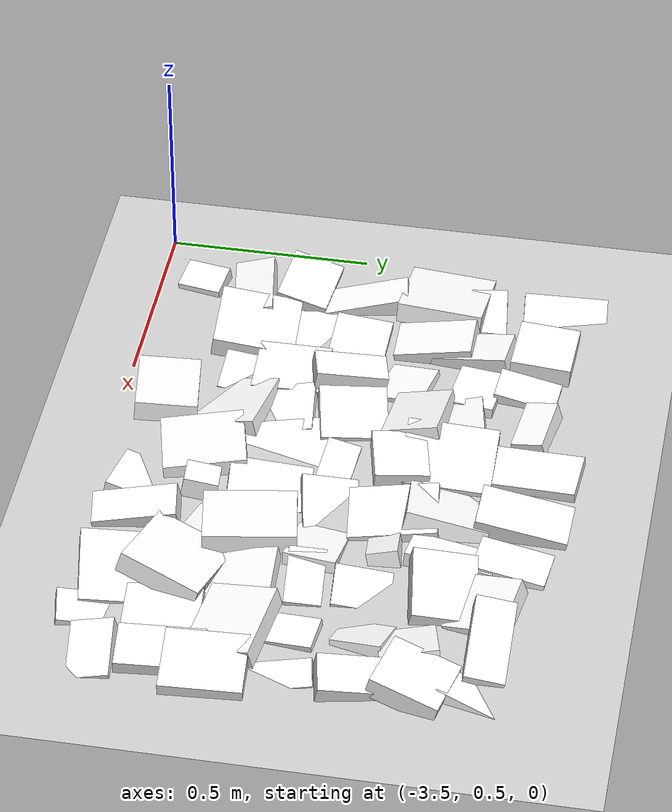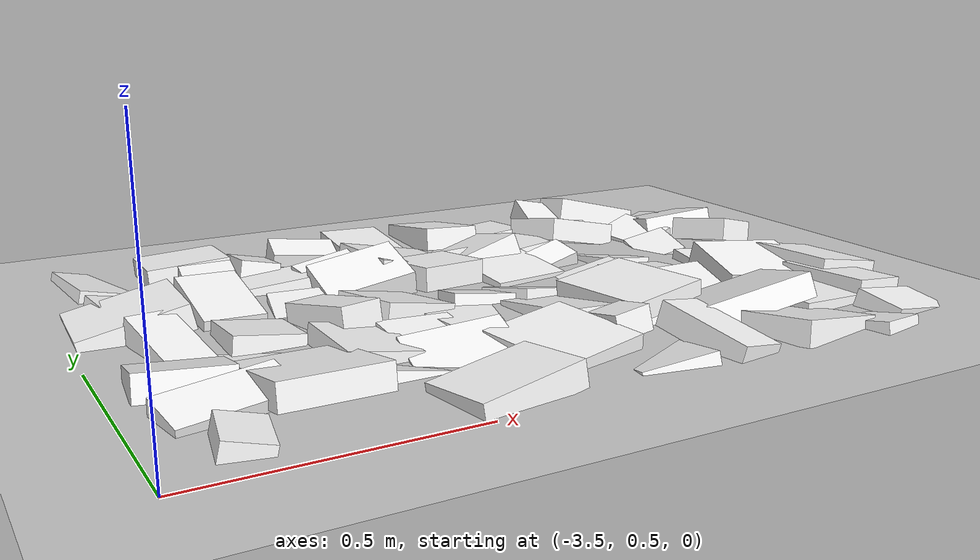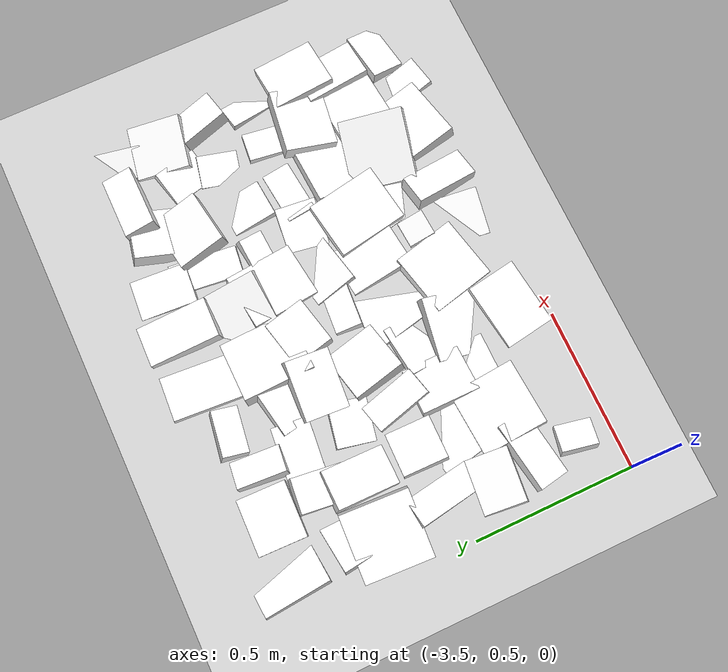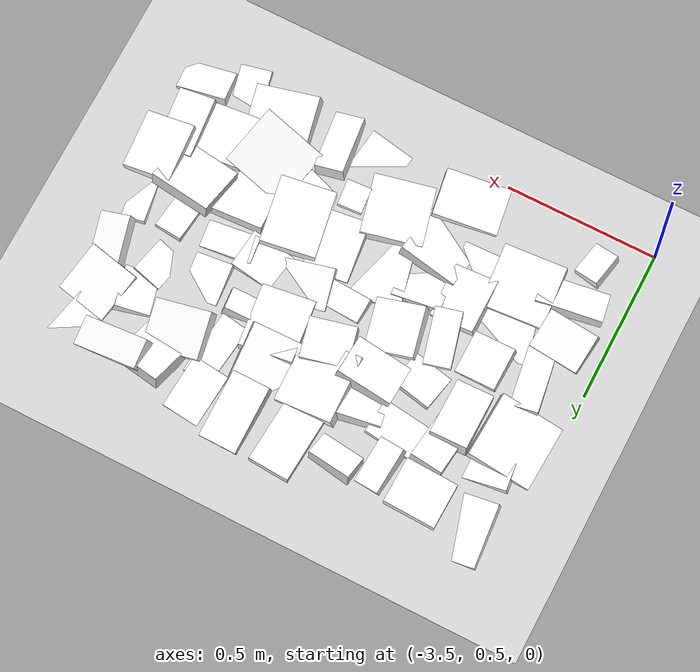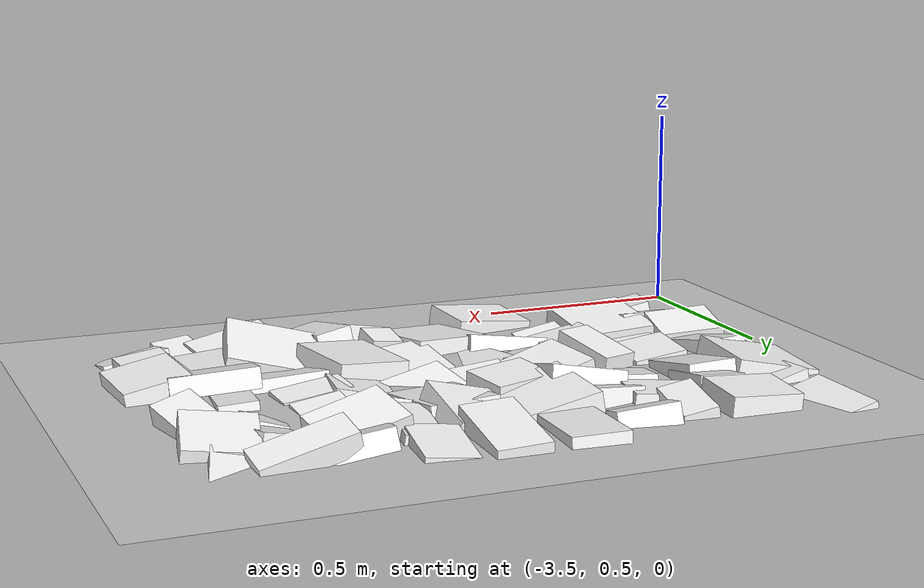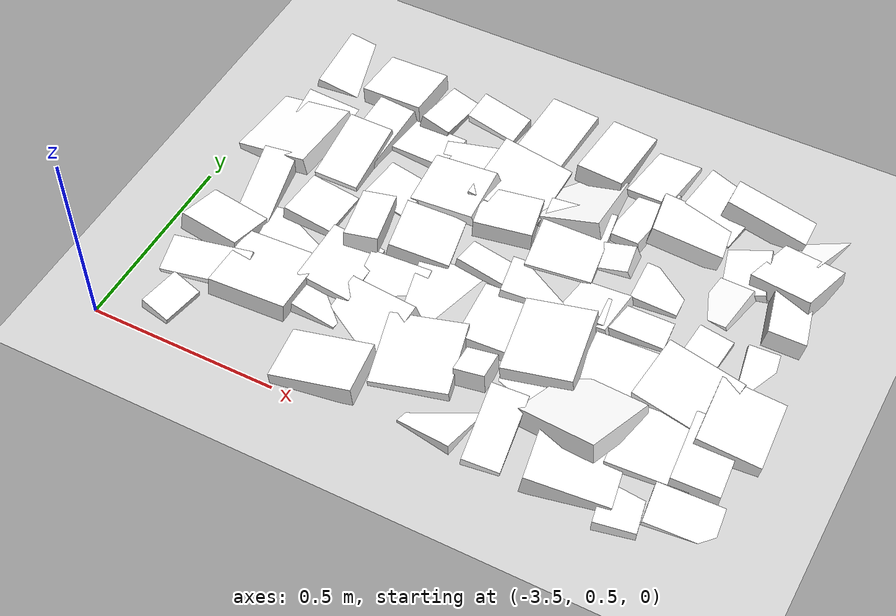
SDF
<sdf version="1.7">
 <world name="default">
  <include><uri>model://sun</uri></include>
  <include><uri>model://ground_plane</uri></include>
  <model name="static_environment">
   <static>true</static>
   <link name="region_0">
    <pose>-2.014062118704401 1.5020243571643022 -0.024271251875729018 0.20937350404994248 0.20035742705850612 2.9082107138131725</pose>
    <collision name="region_0_collision">
     <geometry><box><size>0.09812442635695086 0.18600745447731074 0.05</size></box></geometry>
     <surface><friction><ode><mu>1.0</mu><mu2>1.0</mu2></ode></friction></surface>
    </collision>
    <visual name="region_0_visual">
     <geometry><box><size>0.09812442635695086 0.18600745447731074 0.05</size></box></geometry>
     <material><ambient>1.0 1.0 1.0 1.0</ambient><diffuse>1.0 1.0 1.0 1.0</diffuse></material>
    </visual>
   </link>
   <link name="region_1">
    <pose>-2.162831317794181 1.506378882661463 0.02221125680265211 0.17636777055464248 -0.24887038324074323 3.1521130136101467</pose>
    <collision name="region_1_collision">
     <geometry><box><size>0.21854240044126752 0.09558139820341147 0.05</size></box></geometry>
     <surface><friction><ode><mu>1.0</mu><mu2>1.0</mu2></ode></friction></surface>
    </collision>
    <visual name="region_1_visual">
     <geometry><box><size>0.21854240044126752 0.09558139820341147 0.05</size></box></geometry>
     <material><ambient>1.0 1.0 1.0 1.0</ambient><diffuse>1.0 1.0 1.0 1.0</diffuse></material>
    </visual>
   </link>
   <link name="region_2">
    <pose>-2.283772969083941 1.4796707948259167 0.013228022516943938 -0.23959510102396692 -0.18239491081544157 2.949636508700845</pose>
    <collision name="region_2_collision">
     <geometry><box><size>0.15780564498968497 0.14780661204940646 0.05</size></box></geometry>
     <surface><friction><ode><mu>1.0</mu><mu2>1.0</mu2></ode></friction></surface>
    </collision>
    <visual name="region_2_visual">
     <geometry><box><size>0.15780564498968497 0.14780661204940646 0.05</size></box></geometry>
     <material><ambient>1.0 1.0 1.0 1.0</ambient><diffuse>1.0 1.0 1.0 1.0</diffuse></material>
    </visual>
   </link>
   <link name="region_3">
    <pose>-2.4515872309889537 1.519011785559593 -0.010520660823472323 0.11656298880633531 0.10131117762762315 3.0552847381317116</pose>
    <collision name="region_3_collision">
     <geometry><box><size>0.12148463767350438 0.1757178967818004 0.05</size></box></geometry>
     <surface><friction><ode><mu>1.0</mu><mu2>1.0</mu2></ode></friction></surface>
    </collision>
    <visual name="region_3_visual">
     <geometry><box><size>0.12148463767350438 0.1757178967818004 0.05</size></box></geometry>
     <material><ambient>1.0 1.0 1.0 1.0</ambient><diffuse>1.0 1.0 1.0 1.0</diffuse></material>
    </visual>
   </link>
   <link name="region_4">
    <pose>-2.5923860903359817 1.5270743971972522 0.01337378253102444 0.16250462660738674 -0.04667984909666917 3.117154205710657</pose>
    <collision name="region_4_collision">
     <geometry><box><size>0.12519712936590835 0.22170871185247784 0.05</size></box></geometry>
     <surface><friction><ode><mu>1.0</mu><mu2>1.0</mu2></ode></friction></surface>
    </collision>
    <visual name="region_4_visual">
     <geometry><box><size>0.12519712936590835 0.22170871185247784 0.05</size></box></geometry>
     <material><ambient>1.0 1.0 1.0 1.0</ambient><diffuse>1.0 1.0 1.0 1.0</diffuse></material>
    </visual>
   </link>
   <link name="region_5">
    <pose>-2.769207165839978 1.5278252979354006 -0.004037486487044689 -0.03797377672450064 -0.018425565136327038 3.0783615744119577</pose>
    <collision name="region_5_collision">
     <geometry><box><size>0.13509474410425104 0.22427072405078377 0.05</size></box></geometry>
     <surface><friction><ode><mu>1.0</mu><mu2>1.0</mu2></ode></friction></surface>
    </collision>
    <visual name="region_5_visual">
     <geometry><box><size>0.13509474410425104 0.22427072405078377 0.05</size></box></geometry>
     <material><ambient>1.0 1.0 1.0 1.0</ambient><diffuse>1.0 1.0 1.0 1.0</diffuse></material>
    </visual>
   </link>
   <link name="region_6">
    <pose>-2.9248046555684892 1.5140346236806959 0.006809999691643379 -0.23604610556923372 -0.0999149700880067 3.001926260414443</pose>
    <collision name="region_6_collision">
     <geometry><box><size>0.14482621502587664 0.08027523922062071 0.05</size></box></geometry>
     <surface><friction><ode><mu>1.0</mu><mu2>1.0</mu2></ode></friction></surface>
    </collision>
    <visual name="region_6_visual">
     <geometry><box><size>0.14482621502587664 0.08027523922062071 0.05</size></box></geometry>
     <material><ambient>1.0 1.0 1.0 1.0</ambient><diffuse>1.0 1.0 1.0 1.0</diffuse></material>
    </visual>
   </link>
   <link name="region_7">
    <pose>-3.0548788356708716 1.472990404820162 0.003620225776480468 0.15175832533868816 -0.1931991402300915 3.0300586072125983</pose>
    <collision name="region_7_collision">
     <geometry><box><size>0.08325299900103002 0.1534869106167438 0.05</size></box></geometry>
     <surface><friction><ode><mu>1.0</mu><mu2>1.0</mu2></ode></friction></surface>
    </collision>
    <visual name="region_7_visual">
     <geometry><box><size>0.08325299900103002 0.1534869106167438 0.05</size></box></geometry>
     <material><ambient>1.0 1.0 1.0 1.0</ambient><diffuse>1.0 1.0 1.0 1.0</diffuse></material>
    </visual>
   </link>
   <link name="region_8">
    <pose>-3.199467649924611 1.497797593473034 0.01973715369639454 0.05288884656779247 0.05167780158377683 3.1134359280956345</pose>
    <collision name="region_8_collision">
     <geometry><box><size>0.17125171375281345 0.14891059581547617 0.05</size></box></geometry>
     <surface><friction><ode><mu>1.0</mu><mu2>1.0</mu2></ode></friction></surface>
    </collision>
    <visual name="region_8_visual">
     <geometry><box><size>0.17125171375281345 0.14891059581547617 0.05</size></box></geometry>
     <material><ambient>1.0 1.0 1.0 1.0</ambient><diffuse>1.0 1.0 1.0 1.0</diffuse></material>
    </visual>
   </link>
   <link name="region_9">
    <pose>-3.3673509845132346 1.5267999636369054 -0.021326497802886726 0.047576228318045255 -0.2344244645741168 3.224128716265395</pose>
    <collision name="region_9_collision">
     <geometry><box><size>0.14700701749903353 0.20826712908445394 0.05</size></box></geometry>
     <surface><friction><ode><mu>1.0</mu><mu2>1.0</mu2></ode></friction></surface>
    </collision>
    <visual name="region_9_visual">
     <geometry><box><size>0.14700701749903353 0.20826712908445394 0.05</size></box></geometry>
     <material><ambient>1.0 1.0 1.0 1.0</ambient><diffuse>1.0 1.0 1.0 1.0</diffuse></material>
    </visual>
   </link>
   <link name="region_20">
    <pose>-2.0290737123224836 1.3544659618949602 0.013883972603981082 0.2249410385688751 0.10149108655000566 2.9496028667239127</pose>
    <collision name="region_20_collision">
     <geometry><box><size>0.16704801815626547 0.167758906910901 0.05</size></box></geometry>
     <surface><friction><ode><mu>1.0</mu><mu2>1.0</mu2></ode></friction></surface>
    </collision>
    <visual name="region_20_visual">
     <geometry><box><size>0.16704801815626547 0.167758906910901 0.05</size></box></geometry>
     <material><ambient>1.0 1.0 1.0 1.0</ambient><diffuse>1.0 1.0 1.0 1.0</diffuse></material>
    </visual>
   </link>
   <link name="region_21">
    <pose>-2.141953024207276 1.3257421074516773 -0.005484539528843396 -0.08901620623463669 0.23566264696378902 3.3760911898057206</pose>
    <collision name="region_21_collision">
     <geometry><box><size>0.11199022171846364 0.13784080210763588 0.05</size></box></geometry>
     <surface><friction><ode><mu>1.0</mu><mu2>1.0</mu2></ode></friction></surface>
    </collision>
    <visual name="region_21_visual">
     <geometry><box><size>0.11199022171846364 0.13784080210763588 0.05</size></box></geometry>
     <material><ambient>1.0 1.0 1.0 1.0</ambient><diffuse>1.0 1.0 1.0 1.0</diffuse></material>
    </visual>
   </link>
   <link name="region_22">
    <pose>-2.3200061189991206 1.3769906845053326 0.02109129773419422 0.19128535016952536 -0.22448069998746467 3.2789701077173645</pose>
    <collision name="region_22_collision">
     <geometry><box><size>0.1865126952338271 0.15265339425532023 0.05</size></box></geometry>
     <surface><friction><ode><mu>1.0</mu><mu2>1.0</mu2></ode></friction></surface>
    </collision>
    <visual name="region_22_visual">
     <geometry><box><size>0.1865126952338271 0.15265339425532023 0.05</size></box></geometry>
     <material><ambient>1.0 1.0 1.0 1.0</ambient><diffuse>1.0 1.0 1.0 1.0</diffuse></material>
    </visual>
   </link>
   <link name="region_23">
    <pose>-2.4446017266397075 1.3793270737823784 -0.003566932174191108 0.06492498947557018 0.1381406671326596 3.021408743883807</pose>
    <collision name="region_23_collision">
     <geometry><box><size>0.09088427286351888 0.21080937999444802 0.05</size></box></geometry>
     <surface><friction><ode><mu>1.0</mu><mu2>1.0</mu2></ode></friction></surface>
    </collision>
    <visual name="region_23_visual">
     <geometry><box><size>0.09088427286351888 0.21080937999444802 0.05</size></box></geometry>
     <material><ambient>1.0 1.0 1.0 1.0</ambient><diffuse>1.0 1.0 1.0 1.0</diffuse></material>
    </visual>
   </link>
   <link name="region_24">
    <pose>-2.5985965995793263 1.3455246946917856 0.001550151890214107 0.22298906133503016 0.24963683107212142 3.226961794424131</pose>
    <collision name="region_24_collision">
     <geometry><box><size>0.1708369603893236 0.19901999627410133 0.05</size></box></geometry>
     <surface><friction><ode><mu>1.0</mu><mu2>1.0</mu2></ode></friction></surface>
    </collision>
    <visual name="region_24_visual">
     <geometry><box><size>0.1708369603893236 0.19901999627410133 0.05</size></box></geometry>
     <material><ambient>1.0 1.0 1.0 1.0</ambient><diffuse>1.0 1.0 1.0 1.0</diffuse></material>
    </visual>
   </link>
   <link name="region_25">
    <pose>-2.7713814097055436 1.3216467055907886 0.012322138061207369 0.05829403702023506 -0.20039765036196355 3.152451337678578</pose>
    <collision name="region_25_collision">
     <geometry><box><size>0.1934364205563424 0.2222381332040455 0.05</size></box></geometry>
     <surface><friction><ode><mu>1.0</mu><mu2>1.0</mu2></ode></friction></surface>
    </collision>
    <visual name="region_25_visual">
     <geometry><box><size>0.1934364205563424 0.2222381332040455 0.05</size></box></geometry>
     <material><ambient>1.0 1.0 1.0 1.0</ambient><diffuse>1.0 1.0 1.0 1.0</diffuse></material>
    </visual>
   </link>
   <link name="region_26">
    <pose>-2.9149686044343603 1.330904333247847 0.004191153348755611 -0.17304069632451752 0.10586379385263428 3.320876202726018</pose>
    <collision name="region_26_collision">
     <geometry><box><size>0.15111479722179935 0.11785395388839123 0.05</size></box></geometry>
     <surface><friction><ode><mu>1.0</mu><mu2>1.0</mu2></ode></friction></surface>
    </collision>
    <visual name="region_26_visual">
     <geometry><box><size>0.15111479722179935 0.11785395388839123 0.05</size></box></geometry>
     <material><ambient>1.0 1.0 1.0 1.0</ambient><diffuse>1.0 1.0 1.0 1.0</diffuse></material>
    </visual>
   </link>
   <link name="region_27">
    <pose>-3.0560529507349563 1.350878241987214 -0.007789788959760315 0.022801163499002908 0.0930583674152155 3.0413464474967067</pose>
    <collision name="region_27_collision">
     <geometry><box><size>0.17796620561972773 0.11476944132182873 0.05</size></box></geometry>
     <surface><friction><ode><mu>1.0</mu><mu2>1.0</mu2></ode></friction></surface>
    </collision>
    <visual name="region_27_visual">
     <geometry><box><size>0.17796620561972773 0.11476944132182873 0.05</size></box></geometry>
     <material><ambient>1.0 1.0 1.0 1.0</ambient><diffuse>1.0 1.0 1.0 1.0</diffuse></material>
    </visual>
   </link>
   <link name="region_28">
    <pose>-3.183323975746301 1.3226147355502407 0.007274268477214019 -0.1859034487469569 0.023826251471153748 3.0372617233279735</pose>
    <collision name="region_28_collision">
     <geometry><box><size>0.10730367351970604 0.19324631848978693 0.05</size></box></geometry>
     <surface><friction><ode><mu>1.0</mu><mu2>1.0</mu2></ode></friction></surface>
    </collision>
    <visual name="region_28_visual">
     <geometry><box><size>0.10730367351970604 0.19324631848978693 0.05</size></box></geometry>
     <material><ambient>1.0 1.0 1.0 1.0</ambient><diffuse>1.0 1.0 1.0 1.0</diffuse></material>
    </visual>
   </link>
   <link name="region_29">
    <pose>-3.326024197177781 1.3406444253104646 -0.018395734747924566 -0.021208525792619837 -0.20778109596812883 3.2616132966222233</pose>
    <collision name="region_29_collision">
     <geometry><box><size>0.19887676742959542 0.0896028557916878 0.05</size></box></geometry>
     <surface><friction><ode><mu>1.0</mu><mu2>1.0</mu2></ode></friction></surface>
    </collision>
    <visual name="region_29_visual">
     <geometry><box><size>0.19887676742959542 0.0896028557916878 0.05</size></box></geometry>
     <material><ambient>1.0 1.0 1.0 1.0</ambient><diffuse>1.0 1.0 1.0 1.0</diffuse></material>
    </visual>
   </link>
   <link name="region_40">
    <pose>-2.0011965568894343 1.2197174616367374 0.02147127254759825 0.16438255407813995 -0.23661648154048714 3.336635409121264</pose>
    <collision name="region_40_collision">
     <geometry><box><size>0.09771386688438115 0.1661512127754759 0.05</size></box></geometry>
     <surface><friction><ode><mu>1.0</mu><mu2>1.0</mu2></ode></friction></surface>
    </collision>
    <visual name="region_40_visual">
     <geometry><box><size>0.09771386688438115 0.1661512127754759 0.05</size></box></geometry>
     <material><ambient>1.0 1.0 1.0 1.0</ambient><diffuse>1.0 1.0 1.0 1.0</diffuse></material>
    </visual>
   </link>
   <link name="region_41">
    <pose>-2.157250745480871 1.2191107489353044 -0.015097345654019035 -0.16198697651086208 0.24621802649519625 2.9138493721720455</pose>
    <collision name="region_41_collision">
     <geometry><box><size>0.09964477198536101 0.12509584119083372 0.05</size></box></geometry>
     <surface><friction><ode><mu>1.0</mu><mu2>1.0</mu2></ode></friction></surface>
    </collision>
    <visual name="region_41_visual">
     <geometry><box><size>0.09964477198536101 0.12509584119083372 0.05</size></box></geometry>
     <material><ambient>1.0 1.0 1.0 1.0</ambient><diffuse>1.0 1.0 1.0 1.0</diffuse></material>
    </visual>
   </link>
   <link name="region_42">
    <pose>-2.316373019181766 1.186263963775373 -0.01963911366453627 0.15551033292483352 -0.12700995614709426 3.2084258578618283</pose>
    <collision name="region_42_collision">
     <geometry><box><size>0.12162733286844597 0.13673753567743377 0.05</size></box></geometry>
     <surface><friction><ode><mu>1.0</mu><mu2>1.0</mu2></ode></friction></surface>
    </collision>
    <visual name="region_42_visual">
     <geometry><box><size>0.12162733286844597 0.13673753567743377 0.05</size></box></geometry>
     <material><ambient>1.0 1.0 1.0 1.0</ambient><diffuse>1.0 1.0 1.0 1.0</diffuse></material>
    </visual>
   </link>
   <link name="region_43">
    <pose>-2.4650555598843757 1.2198361206765185 -0.004441983885261923 -0.2050427080077219 0.23736874992469142 3.2176811320159877</pose>
    <collision name="region_43_collision">
     <geometry><box><size>0.12906568352292772 0.07572940316619309 0.05</size></box></geometry>
     <surface><friction><ode><mu>1.0</mu><mu2>1.0</mu2></ode></friction></surface>
    </collision>
    <visual name="region_43_visual">
     <geometry><box><size>0.12906568352292772 0.07572940316619309 0.05</size></box></geometry>
     <material><ambient>1.0 1.0 1.0 1.0</ambient><diffuse>1.0 1.0 1.0 1.0</diffuse></material>
    </visual>
   </link>
   <link name="region_44">
    <pose>-2.573907455990942 1.2227509823361913 -0.004923734385228799 -0.11052516944853741 -0.009537501666561254 3.26991041568167</pose>
    <collision name="region_44_collision">
     <geometry><box><size>0.17342333794669912 0.21412744062600159 0.05</size></box></geometry>
     <surface><friction><ode><mu>1.0</mu><mu2>1.0</mu2></ode></friction></surface>
    </collision>
    <visual name="region_44_visual">
     <geometry><box><size>0.17342333794669912 0.21412744062600159 0.05</size></box></geometry>
     <material><ambient>1.0 1.0 1.0 1.0</ambient><diffuse>1.0 1.0 1.0 1.0</diffuse></material>
    </visual>
   </link>
   <link name="region_45">
    <pose>-2.74402371262897 1.208599276160545 0.023926492284110763 0.060769097616112155 -0.05329978420108494 3.3589191858535874</pose>
    <collision name="region_45_collision">
     <geometry><box><size>0.15133238702472265 0.1312909782964136 0.05</size></box></geometry>
     <surface><friction><ode><mu>1.0</mu><mu2>1.0</mu2></ode></friction></surface>
    </collision>
    <visual name="region_45_visual">
     <geometry><box><size>0.15133238702472265 0.1312909782964136 0.05</size></box></geometry>
     <material><ambient>1.0 1.0 1.0 1.0</ambient><diffuse>1.0 1.0 1.0 1.0</diffuse></material>
    </visual>
   </link>
   <link name="region_46">
    <pose>-2.902317784221777 1.2300108076123604 0.02317990920831034 -0.2467401985324249 0.17297758530481622 3.0727405669533416</pose>
    <collision name="region_46_collision">
     <geometry><box><size>0.18477311194502558 0.1395854447674497 0.05</size></box></geometry>
     <surface><friction><ode><mu>1.0</mu><mu2>1.0</mu2></ode></friction></surface>
    </collision>
    <visual name="region_46_visual">
     <geometry><box><size>0.18477311194502558 0.1395854447674497 0.05</size></box></geometry>
     <material><ambient>1.0 1.0 1.0 1.0</ambient><diffuse>1.0 1.0 1.0 1.0</diffuse></material>
    </visual>
   </link>
   <link name="region_47">
    <pose>-3.043001041186285 1.1806954158845384 -0.014580907470299654 -0.14185588774747127 0.03071341216380047 2.9430436636670043</pose>
    <collision name="region_47_collision">
     <geometry><box><size>0.13459299224318186 0.11916894689664435 0.05</size></box></geometry>
     <surface><friction><ode><mu>1.0</mu><mu2>1.0</mu2></ode></friction></surface>
    </collision>
    <visual name="region_47_visual">
     <geometry><box><size>0.13459299224318186 0.11916894689664435 0.05</size></box></geometry>
     <material><ambient>1.0 1.0 1.0 1.0</ambient><diffuse>1.0 1.0 1.0 1.0</diffuse></material>
    </visual>
   </link>
   <link name="region_48">
    <pose>-3.2007267066167717 1.2274552379626626 0.010727850426596783 -0.19237733280014874 -0.02606910243487015 3.1548847399282174</pose>
    <collision name="region_48_collision">
     <geometry><box><size>0.12169889653552454 0.19603223556493202 0.05</size></box></geometry>
     <surface><friction><ode><mu>1.0</mu><mu2>1.0</mu2></ode></friction></surface>
    </collision>
    <visual name="region_48_visual">
     <geometry><box><size>0.12169889653552454 0.19603223556493202 0.05</size></box></geometry>
     <material><ambient>1.0 1.0 1.0 1.0</ambient><diffuse>1.0 1.0 1.0 1.0</diffuse></material>
    </visual>
   </link>
   <link name="region_49">
    <pose>-3.376691791024438 1.2247071172584358 0.009453672980976303 0.03722040202315269 0.2091633047900845 3.094015312741241</pose>
    <collision name="region_49_collision">
     <geometry><box><size>0.20945052945257953 0.2130379728099082 0.05</size></box></geometry>
     <surface><friction><ode><mu>1.0</mu><mu2>1.0</mu2></ode></friction></surface>
    </collision>
    <visual name="region_49_visual">
     <geometry><box><size>0.20945052945257953 0.2130379728099082 0.05</size></box></geometry>
     <material><ambient>1.0 1.0 1.0 1.0</ambient><diffuse>1.0 1.0 1.0 1.0</diffuse></material>
    </visual>
   </link>
   <link name="region_60">
    <pose>-2.0086971427118034 1.0323772749153162 -0.024872290176046703 -0.11606835810282551 -0.17881410711330886 3.3287937320240433</pose>
    <collision name="region_60_collision">
     <geometry><box><size>0.07912487320766111 0.1952532175862135 0.05</size></box></geometry>
     <surface><friction><ode><mu>1.0</mu><mu2>1.0</mu2></ode></friction></surface>
    </collision>
    <visual name="region_60_visual">
     <geometry><box><size>0.07912487320766111 0.1952532175862135 0.05</size></box></geometry>
     <material><ambient>1.0 1.0 1.0 1.0</ambient><diffuse>1.0 1.0 1.0 1.0</diffuse></material>
    </visual>
   </link>
   <link name="region_61">
    <pose>-2.1488886090180372 1.0223736925852238 -0.015042126238339277 -0.07852013135794877 -0.0676410187465109 3.0400355776392174</pose>
    <collision name="region_61_collision">
     <geometry><box><size>0.09176786287331602 0.1897843092409868 0.05</size></box></geometry>
     <surface><friction><ode><mu>1.0</mu><mu2>1.0</mu2></ode></friction></surface>
    </collision>
    <visual name="region_61_visual">
     <geometry><box><size>0.09176786287331602 0.1897843092409868 0.05</size></box></geometry>
     <material><ambient>1.0 1.0 1.0 1.0</ambient><diffuse>1.0 1.0 1.0 1.0</diffuse></material>
    </visual>
   </link>
   <link name="region_62">
    <pose>-2.3249316660796366 1.0523749831987725 -0.009517894062768867 0.08581927028295727 -0.10907260584651252 3.2311607629455357</pose>
    <collision name="region_62_collision">
     <geometry><box><size>0.17131033355908235 0.08880746864579687 0.05</size></box></geometry>
     <surface><friction><ode><mu>1.0</mu><mu2>1.0</mu2></ode></friction></surface>
    </collision>
    <visual name="region_62_visual">
     <geometry><box><size>0.17131033355908235 0.08880746864579687 0.05</size></box></geometry>
     <material><ambient>1.0 1.0 1.0 1.0</ambient><diffuse>1.0 1.0 1.0 1.0</diffuse></material>
    </visual>
   </link>
   <link name="region_63">
    <pose>-2.4644734090041758 1.0647761156389488 -0.01814895211648662 0.0115759566395634 0.2125207877001566 3.0374984107255405</pose>
    <collision name="region_63_collision">
     <geometry><box><size>0.2069920406179951 0.1269882676004928 0.05</size></box></geometry>
     <surface><friction><ode><mu>1.0</mu><mu2>1.0</mu2></ode></friction></surface>
    </collision>
    <visual name="region_63_visual">
     <geometry><box><size>0.2069920406179951 0.1269882676004928 0.05</size></box></geometry>
     <material><ambient>1.0 1.0 1.0 1.0</ambient><diffuse>1.0 1.0 1.0 1.0</diffuse></material>
    </visual>
   </link>
   <link name="region_64">
    <pose>-2.579588693760759 1.0648126423118318 -0.02366023554546012 0.19705976299606254 -0.16572059085955648 3.3316170578970996</pose>
    <collision name="region_64_collision">
     <geometry><box><size>0.18762816908887603 0.13596831682542068 0.05</size></box></geometry>
     <surface><friction><ode><mu>1.0</mu><mu2>1.0</mu2></ode></friction></surface>
    </collision>
    <visual name="region_64_visual">
     <geometry><box><size>0.18762816908887603 0.13596831682542068 0.05</size></box></geometry>
     <material><ambient>1.0 1.0 1.0 1.0</ambient><diffuse>1.0 1.0 1.0 1.0</diffuse></material>
    </visual>
   </link>
   <link name="region_65">
    <pose>-2.7269473221359037 1.058028690802229 -0.010510337498329898 0.18374081211482918 -0.12045966440871886 3.056151036135509</pose>
    <collision name="region_65_collision">
     <geometry><box><size>0.13434789679920442 0.0828606370578053 0.05</size></box></geometry>
     <surface><friction><ode><mu>1.0</mu><mu2>1.0</mu2></ode></friction></surface>
    </collision>
    <visual name="region_65_visual">
     <geometry><box><size>0.13434789679920442 0.0828606370578053 0.05</size></box></geometry>
     <material><ambient>1.0 1.0 1.0 1.0</ambient><diffuse>1.0 1.0 1.0 1.0</diffuse></material>
    </visual>
   </link>
   <link name="region_66">
    <pose>-2.901672883215209 1.067573646973538 0.0020588918769290157 0.08116830067582725 -0.21067111657317872 3.3437588107289953</pose>
    <collision name="region_66_collision">
     <geometry><box><size>0.1581103738633414 0.16528104624154386 0.05</size></box></geometry>
     <surface><friction><ode><mu>1.0</mu><mu2>1.0</mu2></ode></friction></surface>
    </collision>
    <visual name="region_66_visual">
     <geometry><box><size>0.1581103738633414 0.16528104624154386 0.05</size></box></geometry>
     <material><ambient>1.0 1.0 1.0 1.0</ambient><diffuse>1.0 1.0 1.0 1.0</diffuse></material>
    </visual>
   </link>
   <link name="region_67">
    <pose>-3.042838810718356 1.035494492208183 0.02498709649525467 0.17964357227808475 -0.012119074353568737 3.390856155727695</pose>
    <collision name="region_67_collision">
     <geometry><box><size>0.08713215249993522 0.17846111983562046 0.05</size></box></geometry>
     <surface><friction><ode><mu>1.0</mu><mu2>1.0</mu2></ode></friction></surface>
    </collision>
    <visual name="region_67_visual">
     <geometry><box><size>0.08713215249993522 0.17846111983562046 0.05</size></box></geometry>
     <material><ambient>1.0 1.0 1.0 1.0</ambient><diffuse>1.0 1.0 1.0 1.0</diffuse></material>
    </visual>
   </link>
   <link name="region_68">
    <pose>-3.1885959055340134 1.0359596794038441 -0.0029437115117119488 0.08591096817441979 -0.1285775940427349 3.114522815001479</pose>
    <collision name="region_68_collision">
     <geometry><box><size>0.13551258692655768 0.14023953889285304 0.05</size></box></geometry>
     <surface><friction><ode><mu>1.0</mu><mu2>1.0</mu2></ode></friction></surface>
    </collision>
    <visual name="region_68_visual">
     <geometry><box><size>0.13551258692655768 0.14023953889285304 0.05</size></box></geometry>
     <material><ambient>1.0 1.0 1.0 1.0</ambient><diffuse>1.0 1.0 1.0 1.0</diffuse></material>
    </visual>
   </link>
   <link name="region_69">
    <pose>-3.3430807180080615 1.0285381929349737 0.002809035290791368 -0.21288660352097616 -0.0255078174706449 3.309076343086165</pose>
    <collision name="region_69_collision">
     <geometry><box><size>0.08943465586379602 0.21741279211670586 0.05</size></box></geometry>
     <surface><friction><ode><mu>1.0</mu><mu2>1.0</mu2></ode></friction></surface>
    </collision>
    <visual name="region_69_visual">
     <geometry><box><size>0.08943465586379602 0.21741279211670586 0.05</size></box></geometry>
     <material><ambient>1.0 1.0 1.0 1.0</ambient><diffuse>1.0 1.0 1.0 1.0</diffuse></material>
    </visual>
   </link>
   <link name="region_80">
    <pose>-1.9883371316473737 0.8845938633639511 0.018371814461186665 0.024628338945438033 -0.1699687597671135 3.2096852279529005</pose>
    <collision name="region_80_collision">
     <geometry><box><size>0.16149344705779387 0.19265881054812506 0.05</size></box></geometry>
     <surface><friction><ode><mu>1.0</mu><mu2>1.0</mu2></ode></friction></surface>
    </collision>
    <visual name="region_80_visual">
     <geometry><box><size>0.16149344705779387 0.19265881054812506 0.05</size></box></geometry>
     <material><ambient>1.0 1.0 1.0 1.0</ambient><diffuse>1.0 1.0 1.0 1.0</diffuse></material>
    </visual>
   </link>
   <link name="region_81">
    <pose>-2.1292997426798315 0.9212290550499997 0.01804514333909992 -0.20754793713760394 -0.07137978301191245 2.996074148936363</pose>
    <collision name="region_81_collision">
     <geometry><box><size>0.20699551493959104 0.16304315820753568 0.05</size></box></geometry>
     <surface><friction><ode><mu>1.0</mu><mu2>1.0</mu2></ode></friction></surface>
    </collision>
    <visual name="region_81_visual">
     <geometry><box><size>0.20699551493959104 0.16304315820753568 0.05</size></box></geometry>
     <material><ambient>1.0 1.0 1.0 1.0</ambient><diffuse>1.0 1.0 1.0 1.0</diffuse></material>
    </visual>
   </link>
   <link name="region_82">
    <pose>-2.275321957069371 0.9033913289176626 -0.011726165119979544 -0.19526976494307735 -0.0231654799691573 3.197536678547382</pose>
    <collision name="region_82_collision">
     <geometry><box><size>0.2225055553548428 0.1757824114062242 0.05</size></box></geometry>
     <surface><friction><ode><mu>1.0</mu><mu2>1.0</mu2></ode></friction></surface>
    </collision>
    <visual name="region_82_visual">
     <geometry><box><size>0.2225055553548428 0.1757824114062242 0.05</size></box></geometry>
     <material><ambient>1.0 1.0 1.0 1.0</ambient><diffuse>1.0 1.0 1.0 1.0</diffuse></material>
    </visual>
   </link>
   <link name="region_83">
    <pose>-2.4736009655092177 0.8953586526792207 0.02071165732866328 0.01082935046725314 0.0904751006052747 3.3158334826466445</pose>
    <collision name="region_83_collision">
     <geometry><box><size>0.17905476914916305 0.22179036475720626 0.05</size></box></geometry>
     <surface><friction><ode><mu>1.0</mu><mu2>1.0</mu2></ode></friction></surface>
    </collision>
    <visual name="region_83_visual">
     <geometry><box><size>0.17905476914916305 0.22179036475720626 0.05</size></box></geometry>
     <material><ambient>1.0 1.0 1.0 1.0</ambient><diffuse>1.0 1.0 1.0 1.0</diffuse></material>
    </visual>
   </link>
   <link name="region_84">
    <pose>-2.6169762462353283 0.9123904466013625 -0.008374175038033494 0.1514117827529342 -0.07581134830615927 3.24060449365772</pose>
    <collision name="region_84_collision">
     <geometry><box><size>0.15123007455548812 0.19888745678978412 0.05</size></box></geometry>
     <surface><friction><ode><mu>1.0</mu><mu2>1.0</mu2></ode></friction></surface>
    </collision>
    <visual name="region_84_visual">
     <geometry><box><size>0.15123007455548812 0.19888745678978412 0.05</size></box></geometry>
     <material><ambient>1.0 1.0 1.0 1.0</ambient><diffuse>1.0 1.0 1.0 1.0</diffuse></material>
    </visual>
   </link>
   <link name="region_85">
    <pose>-2.7650310520577284 0.9297965671018192 -0.02478617782362091 -0.04653374775527286 -0.08500862991987052 3.368646592812195</pose>
    <collision name="region_85_collision">
     <geometry><box><size>0.19889912990549816 0.2012782909728528 0.05</size></box></geometry>
     <surface><friction><ode><mu>1.0</mu><mu2>1.0</mu2></ode></friction></surface>
    </collision>
    <visual name="region_85_visual">
     <geometry><box><size>0.19889912990549816 0.2012782909728528 0.05</size></box></geometry>
     <material><ambient>1.0 1.0 1.0 1.0</ambient><diffuse>1.0 1.0 1.0 1.0</diffuse></material>
    </visual>
   </link>
   <link name="region_86">
    <pose>-2.9081624626426765 0.881237108933481 -0.02366924664941189 -0.1851236897035327 -0.0784101126767694 3.255263009770064</pose>
    <collision name="region_86_collision">
     <geometry><box><size>0.15982735733272058 0.18659410562701986 0.05</size></box></geometry>
     <surface><friction><ode><mu>1.0</mu><mu2>1.0</mu2></ode></friction></surface>
    </collision>
    <visual name="region_86_visual">
     <geometry><box><size>0.15982735733272058 0.18659410562701986 0.05</size></box></geometry>
     <material><ambient>1.0 1.0 1.0 1.0</ambient><diffuse>1.0 1.0 1.0 1.0</diffuse></material>
    </visual>
   </link>
   <link name="region_87">
    <pose>-3.045092096565838 0.8905543888612595 -0.0006384489608780922 -0.0015289687545890218 -0.1648705695767005 3.1455762545983132</pose>
    <collision name="region_87_collision">
     <geometry><box><size>0.1444036856549739 0.1801619727260887 0.05</size></box></geometry>
     <surface><friction><ode><mu>1.0</mu><mu2>1.0</mu2></ode></friction></surface>
    </collision>
    <visual name="region_87_visual">
     <geometry><box><size>0.1444036856549739 0.1801619727260887 0.05</size></box></geometry>
     <material><ambient>1.0 1.0 1.0 1.0</ambient><diffuse>1.0 1.0 1.0 1.0</diffuse></material>
    </visual>
   </link>
   <link name="region_88">
    <pose>-3.1800905507581536 0.9272028695507777 -0.024765088704869122 0.08046318855049334 -0.05785262018010051 3.343456595610858</pose>
    <collision name="region_88_collision">
     <geometry><box><size>0.21357667552902163 0.1673782652406772 0.05</size></box></geometry>
     <surface><friction><ode><mu>1.0</mu><mu2>1.0</mu2></ode></friction></surface>
    </collision>
    <visual name="region_88_visual">
     <geometry><box><size>0.21357667552902163 0.1673782652406772 0.05</size></box></geometry>
     <material><ambient>1.0 1.0 1.0 1.0</ambient><diffuse>1.0 1.0 1.0 1.0</diffuse></material>
    </visual>
   </link>
   <link name="region_89">
    <pose>-3.372838920165907 0.8731215890749682 0.01086843626810019 0.2244481943095798 -0.04997588233958389 3.0325748626111015</pose>
    <collision name="region_89_collision">
     <geometry><box><size>0.1662887871117601 0.1297723967705958 0.05</size></box></geometry>
     <surface><friction><ode><mu>1.0</mu><mu2>1.0</mu2></ode></friction></surface>
    </collision>
    <visual name="region_89_visual">
     <geometry><box><size>0.1662887871117601 0.1297723967705958 0.05</size></box></geometry>
     <material><ambient>1.0 1.0 1.0 1.0</ambient><diffuse>1.0 1.0 1.0 1.0</diffuse></material>
    </visual>
   </link>
   <link name="region_100">
    <pose>-2.0215639122824496 0.7761192714450522 0.009335956193358579 0.0310864900420445 -0.10150280907376857 3.2349398955482487</pose>
    <collision name="region_100_collision">
     <geometry><box><size>0.11932921692746454 0.20142703571815715 0.05</size></box></geometry>
     <surface><friction><ode><mu>1.0</mu><mu2>1.0</mu2></ode></friction></surface>
    </collision>
    <visual name="region_100_visual">
     <geometry><box><size>0.11932921692746454 0.20142703571815715 0.05</size></box></geometry>
     <material><ambient>1.0 1.0 1.0 1.0</ambient><diffuse>1.0 1.0 1.0 1.0</diffuse></material>
    </visual>
   </link>
   <link name="region_101">
    <pose>-2.130277118790763 0.7550446822547358 -0.006333684508582349 -0.016663603533165094 -0.0514467344740151 3.225253492670405</pose>
    <collision name="region_101_collision">
     <geometry><box><size>0.20161368595892606 0.17887339392464108 0.05</size></box></geometry>
     <surface><friction><ode><mu>1.0</mu><mu2>1.0</mu2></ode></friction></surface>
    </collision>
    <visual name="region_101_visual">
     <geometry><box><size>0.20161368595892606 0.17887339392464108 0.05</size></box></geometry>
     <material><ambient>1.0 1.0 1.0 1.0</ambient><diffuse>1.0 1.0 1.0 1.0</diffuse></material>
    </visual>
   </link>
   <link name="region_102">
    <pose>-2.3177947796492218 0.7499757868587885 0.02048029405351242 0.24965600401551757 0.2272612636045328 2.9338184175825526</pose>
    <collision name="region_102_collision">
     <geometry><box><size>0.22092793764216775 0.20185537827672273 0.05</size></box></geometry>
     <surface><friction><ode><mu>1.0</mu><mu2>1.0</mu2></ode></friction></surface>
    </collision>
    <visual name="region_102_visual">
     <geometry><box><size>0.22092793764216775 0.20185537827672273 0.05</size></box></geometry>
     <material><ambient>1.0 1.0 1.0 1.0</ambient><diffuse>1.0 1.0 1.0 1.0</diffuse></material>
    </visual>
   </link>
   <link name="region_103">
    <pose>-2.4795000782246466 0.7629423003260596 -0.02343994063630904 -0.16636912421590216 0.10601781274675903 3.362784765548931</pose>
    <collision name="region_103_collision">
     <geometry><box><size>0.11610383132416018 0.183813724204583 0.05</size></box></geometry>
     <surface><friction><ode><mu>1.0</mu><mu2>1.0</mu2></ode></friction></surface>
    </collision>
    <visual name="region_103_visual">
     <geometry><box><size>0.11610383132416018 0.183813724204583 0.05</size></box></geometry>
     <material><ambient>1.0 1.0 1.0 1.0</ambient><diffuse>1.0 1.0 1.0 1.0</diffuse></material>
    </visual>
   </link>
   <link name="region_104">
    <pose>-2.595505246852451 0.7535137705024257 0.019434984996620018 0.18664208295640267 0.11538221932884252 3.230971513268254</pose>
    <collision name="region_104_collision">
     <geometry><box><size>0.08001473904331943 0.08336456639481157 0.05</size></box></geometry>
     <surface><friction><ode><mu>1.0</mu><mu2>1.0</mu2></ode></friction></surface>
    </collision>
    <visual name="region_104_visual">
     <geometry><box><size>0.08001473904331943 0.08336456639481157 0.05</size></box></geometry>
     <material><ambient>1.0 1.0 1.0 1.0</ambient><diffuse>1.0 1.0 1.0 1.0</diffuse></material>
    </visual>
   </link>
   <link name="region_105">
    <pose>-2.7346470502111675 0.732358884077053 0.003435224162484162 -0.06991783616216019 0.06113519767440534 3.3815890492041487</pose>
    <collision name="region_105_collision">
     <geometry><box><size>0.19719890914208707 0.20212952201314374 0.05</size></box></geometry>
     <surface><friction><ode><mu>1.0</mu><mu2>1.0</mu2></ode></friction></surface>
    </collision>
    <visual name="region_105_visual">
     <geometry><box><size>0.19719890914208707 0.20212952201314374 0.05</size></box></geometry>
     <material><ambient>1.0 1.0 1.0 1.0</ambient><diffuse>1.0 1.0 1.0 1.0</diffuse></material>
    </visual>
   </link>
   <link name="region_106">
    <pose>-2.907479613381318 0.7551868103598117 -0.01840996581263095 -0.24977769082213364 0.10374628765505067 2.9879874158017508</pose>
    <collision name="region_106_collision">
     <geometry><box><size>0.19487789782791065 0.21413746942554235 0.05</size></box></geometry>
     <surface><friction><ode><mu>1.0</mu><mu2>1.0</mu2></ode></friction></surface>
    </collision>
    <visual name="region_106_visual">
     <geometry><box><size>0.19487789782791065 0.21413746942554235 0.05</size></box></geometry>
     <material><ambient>1.0 1.0 1.0 1.0</ambient><diffuse>1.0 1.0 1.0 1.0</diffuse></material>
    </visual>
   </link>
   <link name="region_107">
    <pose>-3.071098503590602 0.7766605946587859 -0.015453861793008106 0.1981867619593542 -0.17773882641565597 3.110686447893108</pose>
    <collision name="region_107_collision">
     <geometry><box><size>0.2105464834773001 0.12293951116570014 0.05</size></box></geometry>
     <surface><friction><ode><mu>1.0</mu><mu2>1.0</mu2></ode></friction></surface>
    </collision>
    <visual name="region_107_visual">
     <geometry><box><size>0.2105464834773001 0.12293951116570014 0.05</size></box></geometry>
     <material><ambient>1.0 1.0 1.0 1.0</ambient><diffuse>1.0 1.0 1.0 1.0</diffuse></material>
    </visual>
   </link>
   <link name="region_108">
    <pose>-3.187302797284633 0.7750448883958304 0.014757187128448528 0.15290907565325723 -0.028301799573561826 3.204450163045642</pose>
    <collision name="region_108_collision">
     <geometry><box><size>0.20428175501087323 0.20309684080417825 0.05</size></box></geometry>
     <surface><friction><ode><mu>1.0</mu><mu2>1.0</mu2></ode></friction></surface>
    </collision>
    <visual name="region_108_visual">
     <geometry><box><size>0.20428175501087323 0.20309684080417825 0.05</size></box></geometry>
     <material><ambient>1.0 1.0 1.0 1.0</ambient><diffuse>1.0 1.0 1.0 1.0</diffuse></material>
    </visual>
   </link>
   <link name="region_109">
    <pose>-3.334986051848049 0.7444491180853794 0.00359137108272432 -0.20712045102571291 0.05998300966622022 3.3017464388019637</pose>
    <collision name="region_109_collision">
     <geometry><box><size>0.21483792969966023 0.09951525615182691 0.05</size></box></geometry>
     <surface><friction><ode><mu>1.0</mu><mu2>1.0</mu2></ode></friction></surface>
    </collision>
    <visual name="region_109_visual">
     <geometry><box><size>0.21483792969966023 0.09951525615182691 0.05</size></box></geometry>
     <material><ambient>1.0 1.0 1.0 1.0</ambient><diffuse>1.0 1.0 1.0 1.0</diffuse></material>
    </visual>
   </link>
   <link name="region_120">
    <pose>-2.0109240523659957 0.6197682777032166 -0.010678644581388598 -0.17392881687164574 -0.1461559739329238 3.2686798264083605</pose>
    <collision name="region_120_collision">
     <geometry><box><size>0.16436310916118005 0.10165470052951761 0.05</size></box></geometry>
     <surface><friction><ode><mu>1.0</mu><mu2>1.0</mu2></ode></friction></surface>
    </collision>
    <visual name="region_120_visual">
     <geometry><box><size>0.16436310916118005 0.10165470052951761 0.05</size></box></geometry>
     <material><ambient>1.0 1.0 1.0 1.0</ambient><diffuse>1.0 1.0 1.0 1.0</diffuse></material>
    </visual>
   </link>
   <link name="region_121">
    <pose>-2.1479958100587373 0.5970854524618708 -0.022086350201038742 0.1880241035179014 -0.057953172138433984 3.3406168505203246</pose>
    <collision name="region_121_collision">
     <geometry><box><size>0.10134561643521058 0.18906816730512524 0.05</size></box></geometry>
     <surface><friction><ode><mu>1.0</mu><mu2>1.0</mu2></ode></friction></surface>
    </collision>
    <visual name="region_121_visual">
     <geometry><box><size>0.10134561643521058 0.18906816730512524 0.05</size></box></geometry>
     <material><ambient>1.0 1.0 1.0 1.0</ambient><diffuse>1.0 1.0 1.0 1.0</diffuse></material>
    </visual>
   </link>
   <link name="region_122">
    <pose>-2.277504289945039 0.6282636448610068 -0.0023677284893988057 0.11874804715742471 -0.15551488699149757 3.325824073631246</pose>
    <collision name="region_122_collision">
     <geometry><box><size>0.20797745344703703 0.19619488539034016 0.05</size></box></geometry>
     <surface><friction><ode><mu>1.0</mu><mu2>1.0</mu2></ode></friction></surface>
    </collision>
    <visual name="region_122_visual">
     <geometry><box><size>0.20797745344703703 0.19619488539034016 0.05</size></box></geometry>
     <material><ambient>1.0 1.0 1.0 1.0</ambient><diffuse>1.0 1.0 1.0 1.0</diffuse></material>
    </visual>
   </link>
   <link name="region_123">
    <pose>-2.478500861043045 0.6213952468091992 0.013751211013583932 -0.16643441948813414 -0.15413344608529578 3.2994717331470462</pose>
    <collision name="region_123_collision">
     <geometry><box><size>0.09366416991348124 0.20378697012074395 0.05</size></box></geometry>
     <surface><friction><ode><mu>1.0</mu><mu2>1.0</mu2></ode></friction></surface>
    </collision>
    <visual name="region_123_visual">
     <geometry><box><size>0.09366416991348124 0.20378697012074395 0.05</size></box></geometry>
     <material><ambient>1.0 1.0 1.0 1.0</ambient><diffuse>1.0 1.0 1.0 1.0</diffuse></material>
    </visual>
   </link>
   <link name="region_124">
    <pose>-2.607286246780319 0.6099531153783746 -0.02447941071111341 0.18413411193740115 0.13133023097581853 2.9984969355596536</pose>
    <collision name="region_124_collision">
     <geometry><box><size>0.14825705602805925 0.15150684805577194 0.05</size></box></geometry>
     <surface><friction><ode><mu>1.0</mu><mu2>1.0</mu2></ode></friction></surface>
    </collision>
    <visual name="region_124_visual">
     <geometry><box><size>0.14825705602805925 0.15150684805577194 0.05</size></box></geometry>
     <material><ambient>1.0 1.0 1.0 1.0</ambient><diffuse>1.0 1.0 1.0 1.0</diffuse></material>
    </visual>
   </link>
   <link name="region_126">
    <pose>-2.922717799424981 0.602954744807372 0.008060220298915226 0.07985708676963998 0.11889525013622187 3.3008269502088647</pose>
    <collision name="region_126_collision">
     <geometry><box><size>0.20914142681799403 0.15219455647485614 0.05</size></box></geometry>
     <surface><friction><ode><mu>1.0</mu><mu2>1.0</mu2></ode></friction></surface>
    </collision>
    <visual name="region_126_visual">
     <geometry><box><size>0.20914142681799403 0.15219455647485614 0.05</size></box></geometry>
     <material><ambient>1.0 1.0 1.0 1.0</ambient><diffuse>1.0 1.0 1.0 1.0</diffuse></material>
    </visual>
   </link>
   <link name="region_129">
    <pose>-3.355668653819017 0.6083099449797359 0.0009755239532160676 -0.022850039672724476 -0.21872230571334383 2.951974097623102</pose>
    <collision name="region_129_collision">
     <geometry><box><size>0.08257557329714259 0.11113737238680219 0.05</size></box></geometry>
     <surface><friction><ode><mu>1.0</mu><mu2>1.0</mu2></ode></friction></surface>
    </collision>
    <visual name="region_129_visual">
     <geometry><box><size>0.08257557329714259 0.11113737238680219 0.05</size></box></geometry>
     <material><ambient>1.0 1.0 1.0 1.0</ambient><diffuse>1.0 1.0 1.0 1.0</diffuse></material>
    </visual>
   </link>
  </model>
 </world>
</sdf>
